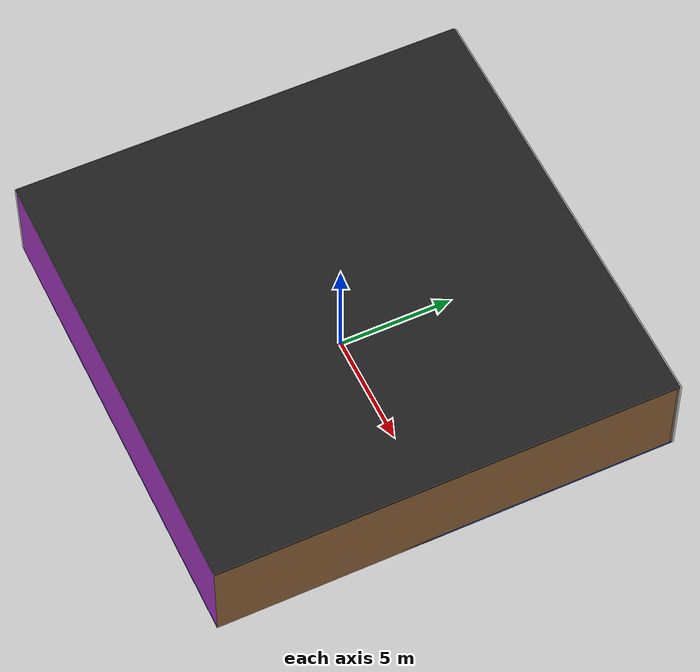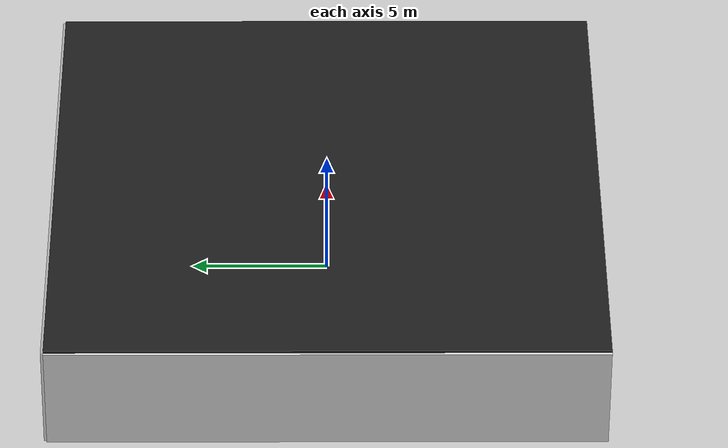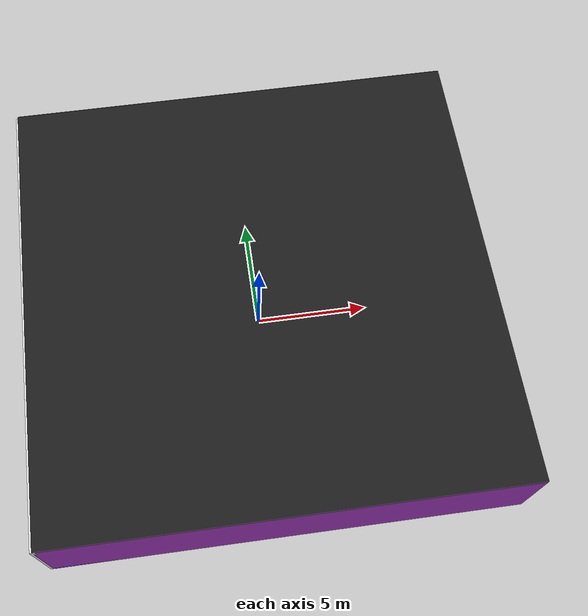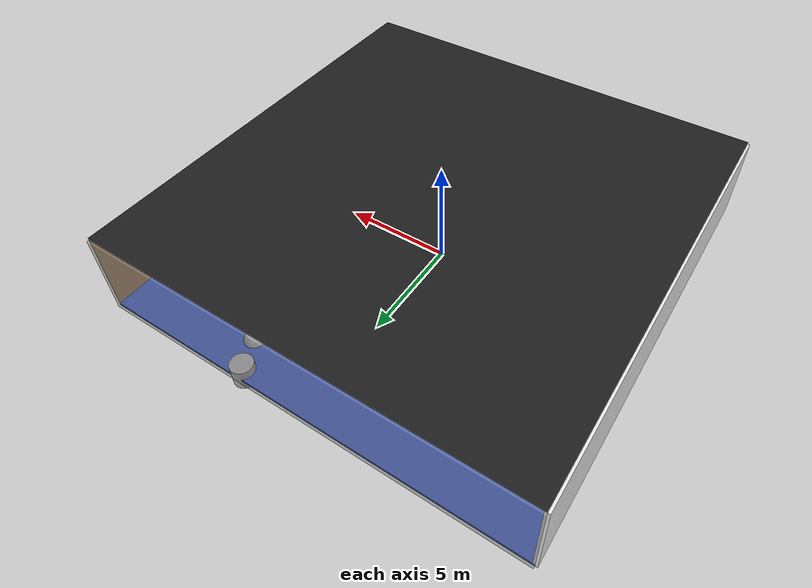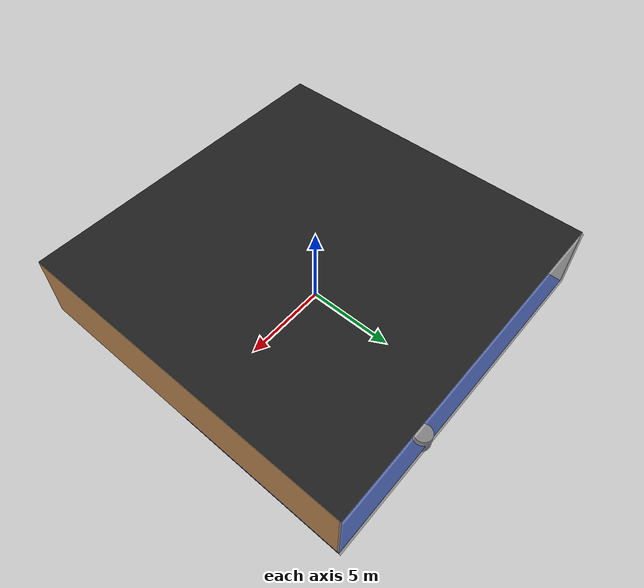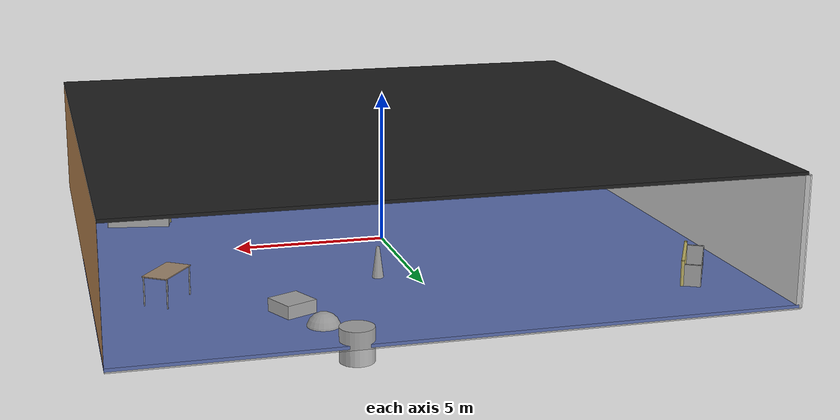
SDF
<sdf version="1.4">
 <world name="default">
  <physics type="ode">
   <max_step_size>0.001</max_step_size>
   <real_time_factor>1</real_time_factor>
   <real_time_update_rate>1000</real_time_update_rate>
   <gravity>0 0 -9.8</gravity>
  </physics>
  <scene><ambient>0.4 0.4 0.4 1</ambient><background>0.7 0.7 0.7 1</background><shadows>1</shadows></scene>
  <model name="Surrounding">
   <static>1</static>
   <link name="Ceiling">
    <collision name="Ceiling_Collision"><geometry><box><size>20 20 0.1</size></box></geometry></collision>
    <visual name="Ceiling_Visual">
     <geometry><box><size>20 20 0.1</size></box></geometry>
     <material>
      <script><uri>file://media/materials/scripts/gazebo.material</uri><name>Gazebo/Black</name></script>
     </material>
    </visual>
    <pose>0 0 4.05 0 0 0</pose>
   </link>
   <link name="Wall_South">
    <collision name="Wall_South_Collision">
     <geometry><box><size>20 0 4</size></box></geometry>
     <pose>0 0 2 0 -0 0</pose>
    </collision>
    <visual name="Wall_South_Visual">
     <pose>0 0 2 0 -0 0</pose>
     <geometry><box><size>20 0 4</size></box></geometry>
     <material>
      <script><uri>file://media/materials/scripts/gazebo.material</uri><name>Gazebo/PurpleGlow</name></script>
     </material>
    </visual>
    <velocity_decay><linear>0</linear><angular>0</angular></velocity_decay>
    <pose>0 -10 0 0 -0 0</pose>
   </link>
   <link name="Wall_East">
    <collision name="Wall_21_Collision">
     <geometry><box><size>20 0 4</size></box></geometry>
     <pose>0 0 2 0 -0 0</pose>
    </collision>
    <visual name="Wall_21_Visual">
     <pose>0 0 2 0 -0 0</pose>
     <geometry><box><size>20 0 4</size></box></geometry>
     <material>
      <script><uri>file://media/materials/scripts/gazebo.material</uri><name>Gazebo/WoodPallet</name></script>
     </material>
    </visual>
    <velocity_decay><linear>0</linear><angular>0</angular></velocity_decay>
    <pose>10 0 0 0 -0 1.5708</pose>
   </link>
   <link name="Wall_North">
    <collision name="Wall_22_Collision">
     <geometry><box><size>20 0.2 4</size></box></geometry>
     <pose>0 0 2 0 -0 0</pose>
    </collision>
    <visual name="Wall_22_Visual">
     <pose>0 0 2 0 -0 0</pose>
     <geometry><box><size>20 0.2 4</size></box></geometry>
     <material>
      <script><uri>file://media/materials/scripts/gazebo.material</uri><name>Gazebo/GreyTransparent</name></script>
     </material>
    </visual>
    <velocity_decay><linear>0</linear><angular>0</angular></velocity_decay>
    <pose>0 10 0 0 -0 0</pose>
   </link>
   <link name="Wall_West">
    <collision name="Wall_23_Collision">
     <geometry><box><size>20 0.2 4</size></box></geometry>
     <pose>0 0 2 0 -0 0</pose>
    </collision>
    <visual name="Wall_23_Visual">
     <pose>0 0 2 0 -0 0</pose>
     <geometry><box><size>20 0.2 4</size></box></geometry>
     <material>
      <script><uri>file://media/materials/scripts/gazebo.material</uri><name>Gazebo/White</name></script>
     </material>
    </visual>
    <velocity_decay><linear>0</linear><angular>0</angular></velocity_decay>
    <pose>-10 0 0 0 0 -1.5708</pose>
   </link>
   <link name="Ground_link">
    <collision name="collision">
     <pose>0 0 .05 0 -0 0</pose>
     <geometry><box><size>20 20 0.1</size></box></geometry>
    </collision>
    <visual name="visual">
     <pose>0 0 .05 0 -0 0</pose>
     <geometry><box><size>20 20 0.1</size></box></geometry>
     <material>
      <script><uri>file://media/materials/scripts/gazebo.material</uri><name>Gazebo/BlueLaser</name></script>
     </material>
    </visual>
   </link>
   <static>1</static>
  </model>
  <spherical_coordinates>
   <surface_model>EARTH_WGS84</surface_model>
   <latitude_deg>0</latitude_deg>
   <longitude_deg>0</longitude_deg>
   <elevation>0</elevation>
   <heading_deg>0</heading_deg>
  </spherical_coordinates>
  <light name="lightball_0" type="diffuse">
   <diffuse>0.8 0.8 0.8 1</diffuse>
   <specular>0.2 0.2 0.2 1</specular>
   <attenuation>
    <range>100</range>
    <constant>0.7</constant>
    <linear>0.01</linear>
    <quadratic>0.001</quadratic>
   </attenuation>
   <direction>-0.5 0.1 -0.9</direction>
   <pose>-0.463060365133 -8.81805105427 3.8055809468 0 0 0</pose>
  </light>
  <light name="lightball_1" type="diffuse">
   <diffuse>0.8 0.8 0.8 1</diffuse>
   <specular>0.2 0.2 0.2 1</specular>
   <attenuation>
    <range>100</range>
    <constant>0.7</constant>
    <linear>0.01</linear>
    <quadratic>0.001</quadratic>
   </attenuation>
   <direction>-0.5 0.1 -0.9</direction>
   <pose>4.36258887566 -8.62421269022 1.73618619932 0 0 0</pose>
  </light>
  <light name="lightball_2" type="diffuse">
   <diffuse>0.8 0.8 0.8 1</diffuse>
   <specular>0.2 0.2 0.2 1</specular>
   <attenuation>
    <range>100</range>
    <constant>0.7</constant>
    <linear>0.01</linear>
    <quadratic>0.001</quadratic>
   </attenuation>
   <direction>-0.5 0.1 -0.9</direction>
   <pose>7.851281874 -1.82039667638 3.87948979544 0 0 0</pose>
  </light>
  <light name="lightball_3" type="diffuse">
   <diffuse>0.8 0.8 0.8 1</diffuse>
   <specular>0.2 0.2 0.2 1</specular>
   <attenuation>
    <range>100</range>
    <constant>0.7</constant>
    <linear>0.01</linear>
    <quadratic>0.001</quadratic>
   </attenuation>
   <direction>-0.5 0.1 -0.9</direction>
   <pose>1.81370168344 -2.18740844668 2.38503714089 0 0 0</pose>
  </light>
  <light name="lightball_4" type="diffuse">
   <diffuse>0.8 0.8 0.8 1</diffuse>
   <specular>0.2 0.2 0.2 1</specular>
   <attenuation>
    <range>100</range>
    <constant>0.7</constant>
    <linear>0.01</linear>
    <quadratic>0.001</quadratic>
   </attenuation>
   <direction>-0.5 0.1 -0.9</direction>
   <pose>8.53245210579 -3.35452309425 2.60292474671 0 0 0</pose>
  </light>
  <light name="lightball_5" type="diffuse">
   <diffuse>0.8 0.8 0.8 1</diffuse>
   <specular>0.2 0.2 0.2 1</specular>
   <attenuation>
    <range>100</range>
    <constant>0.7</constant>
    <linear>0.01</linear>
    <quadratic>0.001</quadratic>
   </attenuation>
   <direction>-0.5 0.1 -0.9</direction>
   <pose>-2.6409664178 9.1960453223 3.57191607016 0 0 0</pose>
  </light>
  <light name="lightball_6" type="diffuse">
   <diffuse>0.8 0.8 0.8 1</diffuse>
   <specular>0.2 0.2 0.2 1</specular>
   <attenuation>
    <range>100</range>
    <constant>0.7</constant>
    <linear>0.01</linear>
    <quadratic>0.001</quadratic>
   </attenuation>
   <direction>-0.5 0.1 -0.9</direction>
   <pose>6.80358338688 -7.27380238591 1.43147492798 0 0 0</pose>
  </light>
  <light name="lightball_7" type="diffuse">
   <diffuse>0.8 0.8 0.8 1</diffuse>
   <specular>0.2 0.2 0.2 1</specular>
   <attenuation>
    <range>100</range>
    <constant>0.7</constant>
    <linear>0.01</linear>
    <quadratic>0.001</quadratic>
   </attenuation>
   <direction>-0.5 0.1 -0.9</direction>
   <pose>-0.590751254945 9.86742391879 3.33417371932 0 0 0</pose>
  </light>
  <light name="lightball_8" type="diffuse">
   <diffuse>0.8 0.8 0.8 1</diffuse>
   <specular>0.2 0.2 0.2 1</specular>
   <attenuation>
    <range>100</range>
    <constant>0.7</constant>
    <linear>0.01</linear>
    <quadratic>0.001</quadratic>
   </attenuation>
   <direction>-0.5 0.1 -0.9</direction>
   <pose>2.46029356626 0.701728968822 3.52591039898 0 0 0</pose>
  </light>
  <light name="lightball_9" type="diffuse">
   <diffuse>0.8 0.8 0.8 1</diffuse>
   <specular>0.2 0.2 0.2 1</specular>
   <attenuation>
    <range>100</range>
    <constant>0.7</constant>
    <linear>0.01</linear>
    <quadratic>0.001</quadratic>
   </attenuation>
   <direction>-0.5 0.1 -0.9</direction>
   <pose>9.66767105247 9.25704403481 3.7825549295 0 0 0</pose>
  </light>
  <light name="lightball_10" type="diffuse">
   <diffuse>0.8 0.8 0.8 1</diffuse>
   <specular>0.2 0.2 0.2 1</specular>
   <attenuation>
    <range>100</range>
    <constant>0.7</constant>
    <linear>0.01</linear>
    <quadratic>0.001</quadratic>
   </attenuation>
   <direction>-0.5 0.1 -0.9</direction>
   <pose>1.2706021594 -5.95261872843 1.94056350657 0 0 0</pose>
  </light>
  <light name="lightball_11" type="diffuse">
   <diffuse>0.8 0.8 0.8 1</diffuse>
   <specular>0.2 0.2 0.2 1</specular>
   <attenuation>
    <range>100</range>
    <constant>0.7</constant>
    <linear>0.01</linear>
    <quadratic>0.001</quadratic>
   </attenuation>
   <direction>-0.5 0.1 -0.9</direction>
   <pose>0.0121951443784 7.49662528942 1.59138186657 0 0 0</pose>
  </light>
  <include>
   <uri>model://construction_cone</uri>
   <pose>-6.84727379625 -4.66745318018 0 0 0 2.62745975694</pose>
  </include>
  <include>
   <uri>model://robocup_3Dsim_goal</uri>
   <pose>-7.95822098564 6.60620224752 0 0 0 2.64588456376</pose>
  </include>
  <include>
   <uri>model://construction_cone</uri>
   <pose>1.26871011433 4.38937374388 0 0 0 2.36341049208</pose>
  </include>
  <include>
   <uri>model://textured_shapes</uri>
   <pose>3.81344071138 8.23869484591 0 0 0 0.435904768815</pose>
  </include>
  <include>
   <uri>model://robocup_3Dsim_goal</uri>
   <pose>7.85046136317 -3.66075936986 0 0 0 1.40427166763</pose>
  </include>
  <include><uri>model://table</uri><pose>7.8118432686 4.96077925727 0 0 0 0.958743095085</pose></include>
 </world>
</sdf>

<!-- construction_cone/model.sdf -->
<sdf version="1.5">
  <model name="Construction Cone">
    <link name="link">
      <collision name="collision">
        <geometry>
          <mesh>
            <scale>10 10 10</scale>
            <uri>file://isr-testbed/construction_cone/meshes/construction_cone.dae</uri>
          </mesh>
        </geometry>
      </collision>
      <visual name="visual">
        <geometry>
          <mesh>
            <scale>10 10 10</scale>
            <uri>file://isr-testbed/construction_cone/meshes/construction_cone.dae</uri>
          </mesh>
        </geometry>
      </visual>
    </link>
  </model>
</sdf>

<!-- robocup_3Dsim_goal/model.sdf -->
<sdf version="1.5">
  <model name="robocup_3d_goal">
    <static>true</static>
    <link name="left_post">
      <pose>0 1.05 0.45 0 0 0</pose>
      <collision name="collision">
        <geometry>
          <cylinder>
            <radius>0.05</radius>
            <length>0.9</length>
          </cylinder>
        </geometry>
      </collision>
      <visual name="visual">
        <geometry>
          <cylinder>
            <radius>0.05</radius>
            <length>0.9</length>
          </cylinder>
        </geometry>
        <material>
          <script>
            <uri>file://media/materials/scripts/gazebo.material</uri>
            <name>Gazebo/ZincYellow</name>
          </script>
        </material>
      </visual>
    </link>
    <link name="left_support_horiz_lower">
      <pose>0.30 1.05 0.01 0 0 0</pose>
      <collision name="collision">
        <geometry>
          <box>
            <size>0.50 0.02 0.02</size>
          </box>
        </geometry>
      </collision>
      <visual name="visual">
        <geometry>
          <box>
            <size>0.50 0.02 0.02</size>
          </box>
        </geometry>
        <material>
          <script>
            <uri>file://media/materials/scripts/gazebo.material</uri>
            <name>Gazebo/White</name>
          </script>
        </material>
      </visual>
    </link>
    <link name="left_support_horiz_upper">
      <pose>0.30 1.05 0.79 0 0 0</pose>
      <collision name="collision">
        <geometry>
          <box>
            <size>0.50 0.02 0.02</size>
          </box>
        </geometry>
      </collision>
      <visual name="visual">
        <geometry>
          <box>
            <size>0.50 0.02 0.02</size>
          </box>
        </geometry>
        <material>
          <script>
            <uri>file://media/materials/scripts/gazebo.material</uri>
            <name>Gazebo/White</name>
          </script>
        </material>
      </visual>
    </link>
    <link name="left_support_vertical">
      <pose>0.56 1.05 0.4 0 1.5708 0</pose>
      <collision name="collision">
        <geometry>
          <box>
            <size>0.80 0.02 0.02</size>
          </box>
        </geometry>
      </collision>
      <visual name="visual">
        <geometry>
          <box>
            <size>0.80 0.02 0.02</size>
          </box>
        </geometry>
        <material>
          <script>
            <uri>file://media/materials/scripts/gazebo.material</uri>
            <name>Gazebo/White</name>
          </script>
        </material>
      </visual>
    </link>
    <link name="right_support_horiz_lower">
      <pose>0.30 -1.05 0.01 0 0 0</pose>
      <collision name="collision">
        <geometry>
          <box>
            <size>0.50 0.02 0.02</size>
          </box>
        </geometry>
      </collision>
      <visual name="visual">
        <geometry>
          <box>
            <size>0.50 0.02 0.02</size>
          </box>
        </geometry>
        <material>
          <script>
            <uri>file://media/materials/scripts/gazebo.material</uri>
            <name>Gazebo/White</name>
          </script>
        </material>
      </visual>
    </link>
    <link name="right_support_horiz_upper">
      <pose>0.30 -1.05 0.79 0 0 0</pose>
      <collision name="collision">
        <geometry>
          <box>
            <size>0.50 0.02 0.02</size>
          </box>
        </geometry>
      </collision>
      <visual name="visual">
        <geometry>
          <box>
            <size>0.50 0.02 0.02</size>
          </box>
        </geometry>
        <material>
          <script>
            <uri>file://media/materials/scripts/gazebo.material</uri>
            <name>Gazebo/White</name>
          </script>
        </material>
      </visual>
    </link>
    <link name="right_support_vertical">
      <pose>0.56 -1.05 0.4 0 1.5708 0</pose>
      <collision name="collision">
        <geometry>
          <box>
            <size>0.80 0.02 0.02</size>
          </box>
        </geometry>
      </collision>
      <visual name="visual">
        <geometry>
          <box>
            <size>0.80 0.02 0.02</size>
          </box>
        </geometry>
        <material>
          <script>
            <uri>file://media/materials/scripts/gazebo.material</uri>
            <name>Gazebo/White</name>
          </script>
        </material>
      </visual>
    </link>
    <link name="center_support_horiz_lower">
      <pose>0.56 0 0.01 0 1.5708 0</pose>
      <collision name="collision">
        <geometry>
          <box>
            <size>0.02 2.08 0.02</size>
          </box>
        </geometry>
      </collision>
      <visual name="visual">
        <geometry>
          <box>
            <size>0.02 2.08 0.02</size>
          </box>
        </geometry>
        <material>
          <script>
            <uri>file://media/materials/scripts/gazebo.material</uri>
            <name>Gazebo/White</name>
          </script>
        </material>
      </visual>
    </link>
    <link name="center_support_horiz_upper">
      <pose>0.56 0 0.79 0 1.5708 0</pose>
      <collision name="collision">
        <geometry>
          <box>
            <size>0.02 2.08 0.02</size>
          </box>
        </geometry>
      </collision>
      <visual name="visual">
        <geometry>
          <box>
            <size>0.02 2.08 0.02</size>
          </box>
        </geometry>
        <material>
          <script>
            <uri>file://media/materials/scripts/gazebo.material</uri>
            <name>Gazebo/White</name>
          </script>
        </material>
      </visual>
    </link>
    <link name="right_post">
      <pose>0 -1.05 0.45 0 0 0</pose>
      <collision name="collision">
        <geometry>
          <cylinder>
            <radius>0.05</radius>
            <length>0.9</length>
          </cylinder>
        </geometry>
      </collision>
      <visual name="visual">
        <geometry>
          <cylinder>
            <radius>0.05</radius>
            <length>0.9</length>
          </cylinder>
        </geometry>
        <material>
          <script>
            <uri>file://media/materials/scripts/gazebo.material</uri>
            <name>Gazebo/ZincYellow</name>
          </script>
        </material>
      </visual>
    </link>
    <link name="crossbar">
      <pose>0 0 0.85 1.57 1.57 0</pose>
      <collision name="collision">
        <geometry>
          <cylinder>
            <radius>0.05</radius>
            <length>2.0</length>
          </cylinder>
        </geometry>
      </collision>
      <visual name="visual">
        <geometry>
          <cylinder>
            <radius>0.05</radius>
            <length>2.0</length>
          </cylinder>
        </geometry>
        <material>
          <script>
            <uri>file://media/materials/scripts/gazebo.material</uri>
            <name>Gazebo/ZincYellow</name>
          </script>
        </material>
      </visual>
    </link>
    <link name="center_net">
      <pose>0.56 0 0.40 0 0 0</pose>
      <collision name="collision">
        <geometry>
          <box>
            <size>0.01 2.1 0.80</size>
          </box>
        </geometry>
      </collision>
      <visual name="visual">
        <geometry>
          <box>
            <size>0.01 2.1 0.80</size>
          </box>
        </geometry>
        <material>
          <script>
            <uri>model://../model_source/models/robocup09_spl_field/materials/scripts/</uri>
            <uri>model://../model_source/models/robocup09_spl_field/materials/textures/</uri>
            <name>RoboCup/Net</name>
          </script>
        </material>
      </visual>
    </link>
    <link name="left_net">
      <pose>0.30 1.05 0.40 0 0 0</pose>
      <collision name="collision">
        <geometry>
          <box>
            <size>0.50 0.01 0.76</size>
          </box>
        </geometry>
      </collision>
      <visual name="visual">
        <geometry>
          <box>
            <size>0.50 0.01 0.76</size>
          </box>
        </geometry>
        <material>
          <script>
            <uri>model://../model_source/models/robocup09_spl_field/materials/scripts/</uri>
            <uri>model://../model_source/models/robocup09_spl_field/materials/textures/</uri>
            <name>RoboCup/Net</name>
          </script>
        </material>
      </visual>
    </link>
    <link name="right_net">
      <pose>0.30 -1.05 0.40 0 0 0</pose>
      <collision name="collision">
        <geometry>
          <box>
            <size>0.50 0.01 0.76</size>
          </box>
        </geometry>
      </collision>
      <visual name="visual">
        <geometry>
          <box>
            <size>0.50 0.01 0.76</size>
          </box>
        </geometry>
        <material>
          <script>
            <uri>model://../model_source/models/robocup09_spl_field/materials/scripts/</uri>
            <uri>model://../model_source/models/robocup09_spl_field/materials/textures/</uri>
            <name>RoboCup/Net</name>
          </script>
        </material>
      </visual>
    </link>
  </model>
</sdf>

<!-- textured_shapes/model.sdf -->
<sdf version="1.6">
  <model name="textured_shapes">
    <pose>0 0 0.5 0 0 0</pose>
    <link name="box">
      <pose>0 -1.5 0 0 0 0</pose>
      <collision name="collision">
        <geometry>
          <box>
            <size>1 1 1</size>
          </box>
        </geometry>
      </collision>
      <visual name="visual">
        <geometry>
          <box>
            <size>1 1 1</size>
          </box>
        </geometry>
        <material>
          <script>
            <uri>model://../model_source/models/textured_shapes/materials/scripts</uri>
            <uri>model://../model_source/models/textured_shapes/materials/textures</uri>
            <name>TexturedShape/Squares</name>
          </script>
        </material>
      </visual>
    </link>
    <link name="sphere">
      <collision name="collision">
        <geometry>
          <sphere>
            <radius>0.5</radius>
          </sphere>
        </geometry>
      </collision>
      <visual name="visual">
        <geometry>
          <sphere>
            <radius>0.5</radius>
          </sphere>
        </geometry>
        <material>
          <script>
            <uri>model://../model_source/models/textured_shapes/materials/scripts</uri>
            <uri>model://../model_source/models/textured_shapes/materials/textures</uri>
            <name>TexturedShape/Squares</name>
          </script>
        </material>
      </visual>
    </link>
    <link name="cylinder">
      <pose>0 1.5 0 0 0 0</pose>
      <collision name="collision">
        <geometry>
          <cylinder>
            <radius>0.5</radius>
            <length>1</length>
          </cylinder>
        </geometry>
      </collision>
      <visual name="visual">
        <geometry>
          <cylinder>
            <radius>0.5</radius>
            <length>1</length>
          </cylinder>
        </geometry>
        <material>
          <script>
            <uri>model://../model_source/models/textured_shapes/materials/scripts</uri>
            <uri>model://../model_source/models/textured_shapes/materials/textures</uri>
            <name>TexturedShape/Squares</name>
          </script>
        </material>
      </visual>
    </link>
  </model>
</sdf>

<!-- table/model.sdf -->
<sdf version="1.5">
  <model name="table">
    <static>true</static>
    <link name="link">
      <collision name="surface">
        <pose>0 0 1.0 0 0 0</pose>
        <geometry>
          <box>
            <size>1.5 0.8 0.03</size>
          </box>
        </geometry>
        <surface>
          <friction>
            <ode>
              <mu>0.6</mu>
              <mu2>0.6</mu2>
            </ode>
          </friction>
        </surface>
      </collision>
      <visual name="visual1">
        <pose>0 0 1.0 0 0 0</pose>
        <geometry>
          <box>
            <size>1.5 0.8 0.03</size>
          </box>
        </geometry>
        <material>
          <script>
            <uri>model://media/materials/scripts/gazebo.material</uri>
            <name>Gazebo/Wood</name>
          </script>
        </material>
      </visual>
      <collision name="front_left_leg">
        <pose>0.68 0.38 0.5 0 0 0</pose>
        <geometry>
          <cylinder>
            <radius>0.02</radius>
            <length>1.0</length>
          </cylinder>
        </geometry>
      </collision>
      <visual name="front_left_leg">
        <pose>0.68 0.38 0.5 0 0 0</pose>
        <geometry>
          <cylinder>
            <radius>0.02</radius>
            <length>1.0</length>
          </cylinder>
        </geometry>
        <material>
          <script>
            <uri>model://media/materials/scripts/gazebo.material</uri>
            <name>Gazebo/Grey</name>
          </script>
        </material>
      </visual>
      <collision name="front_right_leg">
        <pose>0.68 -0.38 0.5 0 0 0</pose>
        <geometry>
          <cylinder>
            <radius>0.02</radius>
            <length>1.0</length>
          </cylinder>
        </geometry>
      </collision>
      <visual name="front_right_leg">
        <pose>0.68 -0.38 0.5 0 0 0</pose>
        <geometry>
          <cylinder>
            <radius>0.02</radius>
            <length>1.0</length>
          </cylinder>
        </geometry>
        <material>
          <script>
            <uri>model://media/materials/scripts/gazebo.material</uri>
            <name>Gazebo/Grey</name>
          </script>
        </material>
      </visual>
      <collision name="back_right_leg">
        <pose>-0.68 -0.38 0.5 0 0 0</pose>
        <geometry>
          <cylinder>
            <radius>0.02</radius>
            <length>1.0</length>
          </cylinder>
        </geometry>
      </collision>
      <visual name="back_right_leg">
        <pose>-0.68 -0.38 0.5 0 0 0</pose>
        <geometry>
          <cylinder>
            <radius>0.02</radius>
            <length>1.0</length>
          </cylinder>
        </geometry>
        <material>
          <script>
            <uri>model://media/materials/scripts/gazebo.material</uri>
            <name>Gazebo/Grey</name>
          </script>
        </material>
      </visual>
      <collision name="back_left_leg">
        <pose>-0.68 0.38 0.5 0 0 0</pose>
        <geometry>
          <cylinder>
            <radius>0.02</radius>
            <length>1.0</length>
          </cylinder>
        </geometry>
      </collision>
      <visual name="back_left_leg">
        <pose>-0.68 0.38 0.5 0 0 0</pose>
        <geometry>
          <cylinder>
            <radius>0.02</radius>
            <length>1.0</length>
          </cylinder>
        </geometry>
        <material>
          <script>
            <uri>model://media/materials/scripts/gazebo.material</uri>
            <name>Gazebo/Grey</name>
          </script>
        </material>
      </visual>
    </link>
  </model>
</sdf>
